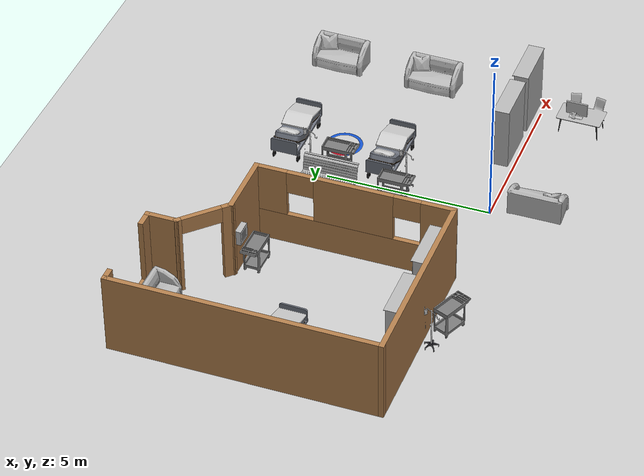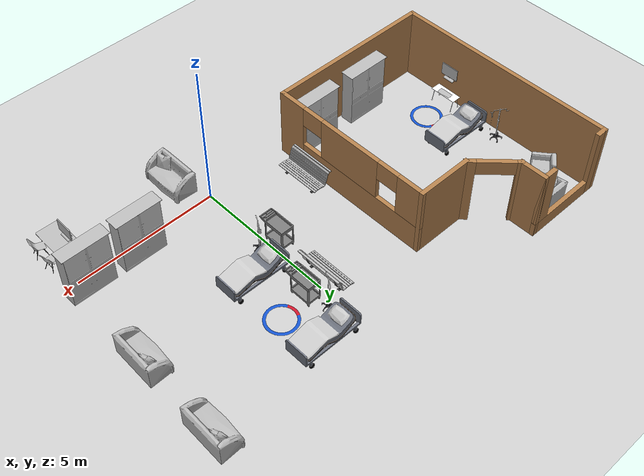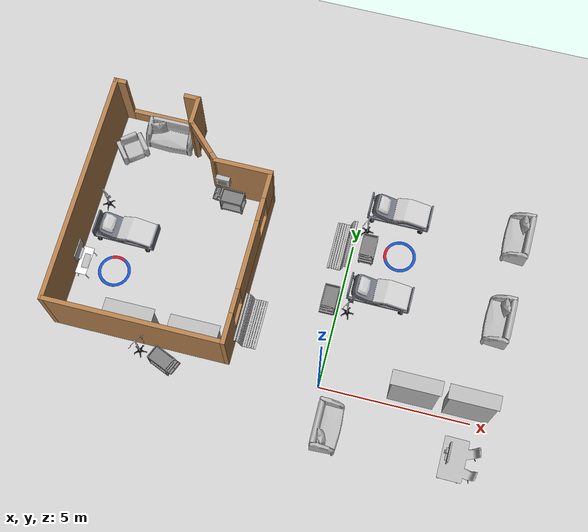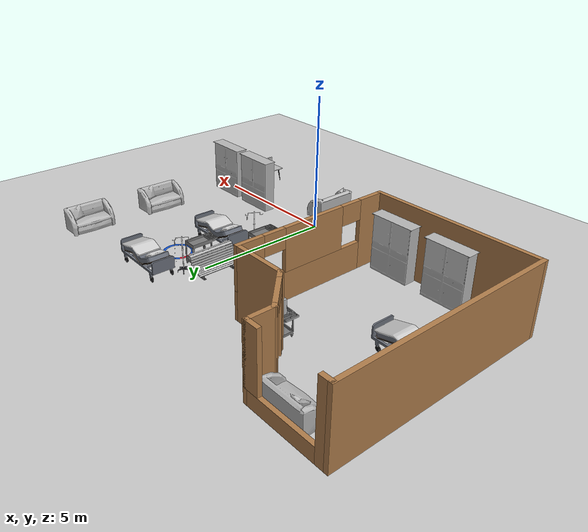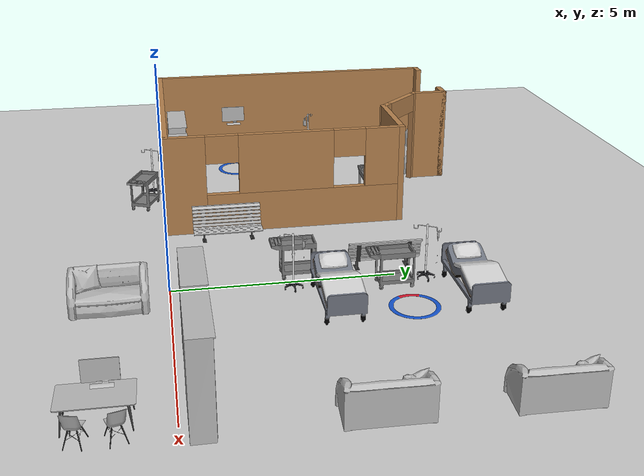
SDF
<sdf version="1.6">
 <world name="default">
  <model name="ground_plane">
   <static>1</static>
   <link name="link">
    <collision name="collision">
     <geometry><plane><normal>0 0 1</normal><size>100 100</size></plane></geometry>
     <surface>
      <contact><collide_bitmask>65535</collide_bitmask></contact>
      <friction><ode><mu>100</mu><mu2>50</mu2></ode></friction>
     </surface>
    </collision>
    <visual name="visual">
     <cast_shadows>0</cast_shadows>
     <geometry><plane><normal>0 0 1</normal><size>100 100</size></plane></geometry>
     <material>
      <script><uri>file://media/materials/scripts/gazebo.material</uri><name>Gazebo/Grey</name></script>
     </material>
    </visual>
   </link>
  </model>
  <model name="hospital_room_empty">
   <link name="Wall_0">
    <pose>-4e-06 -3.9165 0 0 -0 0</pose>
    <visual name="Wall_0_Visual">
     <pose>0 0 1.25 0 -0 0</pose>
     <geometry><box><size>6 0.15 2.5</size></box></geometry>
     <material>
      <script><uri>file://media/materials/scripts/gazebo.material</uri><name>Gazebo/Wood</name></script>
      <ambient>1 1 1 1</ambient>
     </material>
     <meta><layer>0</layer></meta>
    </visual>
    <collision name="Wall_0_Collision">
     <pose>0 0 1.25 0 -0 0</pose>
     <geometry><box><size>6 0.15 2.5</size></box></geometry>
     <surface>
      <friction>
       <ode><mu>1</mu><mu2>1</mu2><fdir1>0 0 0</fdir1><slip1>0</slip1><slip2>0</slip2></ode>
       <torsional>
        <coefficient>1</coefficient>
        <patch_radius>0</patch_radius>
        <surface_radius>0</surface_radius>
        <use_patch_radius>1</use_patch_radius>
        <ode><slip>0</slip></ode>
       </torsional>
      </friction>
      <bounce><restitution_coefficient>0</restitution_coefficient><threshold>1e+06</threshold></bounce>
      <contact>
       <collide_without_contact>0</collide_without_contact>
       <collide_without_contact_bitmask>1</collide_without_contact_bitmask>
       <collide_bitmask>1</collide_bitmask>
       <ode>
        <soft_cfm>0</soft_cfm>
        <soft_erp>0.2</soft_erp>
        <kp>1e+13</kp>
        <kd>1</kd>
        <max_vel>0.01</max_vel>
        <min_depth>0</min_depth>
       </ode>
       <bullet>
        <split_impulse>1</split_impulse>
        <split_impulse_penetration_threshold>-0.01</split_impulse_penetration_threshold>
        <soft_cfm>0</soft_cfm>
        <soft_erp>0.2</soft_erp>
        <kp>1e+13</kp>
        <kd>1</kd>
       </bullet>
      </contact>
     </surface>
    </collision>
   </link>
   <link name="Wall_3">
    <pose>-2.925 0 0 0 -0 1.5708</pose>
    <visual name="Wall_3_Visual">
     <pose>0 0 1.25 0 -0 0</pose>
     <geometry><box><size>7.98302 0.15 2.5</size></box></geometry>
     <material>
      <script><uri>file://media/materials/scripts/gazebo.material</uri><name>Gazebo/Wood</name></script>
      <ambient>1 1 1 1</ambient>
     </material>
     <meta><layer>0</layer></meta>
    </visual>
    <collision name="Wall_3_Collision">
     <pose>0 0 1.25 0 -0 0</pose>
     <geometry><box><size>7.98302 0.15 2.5</size></box></geometry>
     <surface>
      <friction>
       <ode><mu>1</mu><mu2>1</mu2><fdir1>0 0 0</fdir1><slip1>0</slip1><slip2>0</slip2></ode>
       <torsional>
        <coefficient>1</coefficient>
        <patch_radius>0</patch_radius>
        <surface_radius>0</surface_radius>
        <use_patch_radius>1</use_patch_radius>
        <ode><slip>0</slip></ode>
       </torsional>
      </friction>
      <bounce><restitution_coefficient>0</restitution_coefficient><threshold>1e+06</threshold></bounce>
      <contact>
       <collide_without_contact>0</collide_without_contact>
       <collide_without_contact_bitmask>1</collide_without_contact_bitmask>
       <collide_bitmask>1</collide_bitmask>
       <ode>
        <soft_cfm>0</soft_cfm>
        <soft_erp>0.2</soft_erp>
        <kp>1e+13</kp>
        <kd>1</kd>
        <max_vel>0.01</max_vel>
        <min_depth>0</min_depth>
       </ode>
       <bullet>
        <split_impulse>1</split_impulse>
        <split_impulse_penetration_threshold>-0.01</split_impulse_penetration_threshold>
        <soft_cfm>0</soft_cfm>
        <soft_erp>0.2</soft_erp>
        <kp>1e+13</kp>
        <kd>1</kd>
       </bullet>
      </contact>
     </surface>
    </collision>
   </link>
   <link name="Wall_4">
    <pose>-1.5 3.9165 0 0 -0 0</pose>
    <visual name="Wall_4_Visual_0">
     <pose>-1.28125 0 1.25 0 -0 0</pose>
     <geometry><box><size>0.437506 0.15 2.5</size></box></geometry>
     <material>
      <script><uri>file://media/materials/scripts/gazebo.material</uri><name>Gazebo/Wood</name></script>
      <ambient>1 1 1 1</ambient>
     </material>
     <meta><layer>0</layer></meta>
    </visual>
    <visual name="Wall_4_Visual_1">
     <pose>0.218753 0 0.25 0 -0 0</pose>
     <geometry><box><size>2.56249 0.15 0.5</size></box></geometry>
     <material>
      <script><uri>file://media/materials/scripts/gazebo.material</uri><name>Gazebo/Wood</name></script>
      <ambient>1 1 1 1</ambient>
     </material>
     <meta><layer>0</layer></meta>
    </visual>
    <visual name="Wall_4_Visual_2">
     <pose>1.21875 0 1.5 0 -0 0</pose>
     <geometry><box><size>0.562494 0.15 2</size></box></geometry>
     <material>
      <script><uri>file://media/materials/scripts/gazebo.material</uri><name>Gazebo/Wood</name></script>
      <ambient>1 1 1 1</ambient>
     </material>
     <meta><layer>0</layer></meta>
    </visual>
    <collision name="Wall_4_Collision_0">
     <pose>-1.28125 0 1.25 0 -0 0</pose>
     <geometry><box><size>0.437506 0.15 2.5</size></box></geometry>
     <surface>
      <friction>
       <ode><mu>1</mu><mu2>1</mu2><fdir1>0 0 0</fdir1><slip1>0</slip1><slip2>0</slip2></ode>
       <torsional>
        <coefficient>1</coefficient>
        <patch_radius>0</patch_radius>
        <surface_radius>0</surface_radius>
        <use_patch_radius>1</use_patch_radius>
        <ode><slip>0</slip></ode>
       </torsional>
      </friction>
      <bounce><restitution_coefficient>0</restitution_coefficient><threshold>1e+06</threshold></bounce>
      <contact>
       <collide_without_contact>0</collide_without_contact>
       <collide_without_contact_bitmask>1</collide_without_contact_bitmask>
       <collide_bitmask>1</collide_bitmask>
       <ode>
        <soft_cfm>0</soft_cfm>
        <soft_erp>0.2</soft_erp>
        <kp>1e+13</kp>
        <kd>1</kd>
        <max_vel>0.01</max_vel>
        <min_depth>0</min_depth>
       </ode>
       <bullet>
        <split_impulse>1</split_impulse>
        <split_impulse_penetration_threshold>-0.01</split_impulse_penetration_threshold>
        <soft_cfm>0</soft_cfm>
        <soft_erp>0.2</soft_erp>
        <kp>1e+13</kp>
        <kd>1</kd>
       </bullet>
      </contact>
     </surface>
    </collision>
    <collision name="Wall_4_Collision_1">
     <pose>0.218753 0 0.25 0 -0 0</pose>
     <geometry><box><size>2.56249 0.15 0.5</size></box></geometry>
     <surface>
      <friction>
       <ode><mu>1</mu><mu2>1</mu2><fdir1>0 0 0</fdir1><slip1>0</slip1><slip2>0</slip2></ode>
       <torsional>
        <coefficient>1</coefficient>
        <patch_radius>0</patch_radius>
        <surface_radius>0</surface_radius>
        <use_patch_radius>1</use_patch_radius>
        <ode><slip>0</slip></ode>
       </torsional>
      </friction>
      <bounce><restitution_coefficient>0</restitution_coefficient><threshold>1e+06</threshold></bounce>
      <contact>
       <collide_without_contact>0</collide_without_contact>
       <collide_without_contact_bitmask>1</collide_without_contact_bitmask>
       <collide_bitmask>1</collide_bitmask>
       <ode>
        <soft_cfm>0</soft_cfm>
        <soft_erp>0.2</soft_erp>
        <kp>1e+13</kp>
        <kd>1</kd>
        <max_vel>0.01</max_vel>
        <min_depth>0</min_depth>
       </ode>
       <bullet>
        <split_impulse>1</split_impulse>
        <split_impulse_penetration_threshold>-0.01</split_impulse_penetration_threshold>
        <soft_cfm>0</soft_cfm>
        <soft_erp>0.2</soft_erp>
        <kp>1e+13</kp>
        <kd>1</kd>
       </bullet>
      </contact>
     </surface>
    </collision>
    <collision name="Wall_4_Collision_2">
     <pose>1.21875 0 1.5 0 -0 0</pose>
     <geometry><box><size>0.562494 0.15 2</size></box></geometry>
     <surface>
      <friction>
       <ode><mu>1</mu><mu2>1</mu2><fdir1>0 0 0</fdir1><slip1>0</slip1><slip2>0</slip2></ode>
       <torsional>
        <coefficient>1</coefficient>
        <patch_radius>0</patch_radius>
        <surface_radius>0</surface_radius>
        <use_patch_radius>1</use_patch_radius>
        <ode><slip>0</slip></ode>
       </torsional>
      </friction>
      <bounce><restitution_coefficient>0</restitution_coefficient><threshold>1e+06</threshold></bounce>
      <contact>
       <collide_without_contact>0</collide_without_contact>
       <collide_without_contact_bitmask>1</collide_without_contact_bitmask>
       <collide_bitmask>1</collide_bitmask>
       <ode>
        <soft_cfm>0</soft_cfm>
        <soft_erp>0.2</soft_erp>
        <kp>1e+13</kp>
        <kd>1</kd>
        <max_vel>0.01</max_vel>
        <min_depth>0</min_depth>
       </ode>
       <bullet>
        <split_impulse>1</split_impulse>
        <split_impulse_penetration_threshold>-0.01</split_impulse_penetration_threshold>
        <soft_cfm>0</soft_cfm>
        <soft_erp>0.2</soft_erp>
        <kp>1e+13</kp>
        <kd>1</kd>
       </bullet>
      </contact>
     </surface>
    </collision>
   </link>
   <link name="Wall_5">
    <pose>-0.075004 3.4915 0 0 0 -1.5708</pose>
    <visual name="Wall_5_Visual">
     <pose>0 0 1.25 0 -0 0</pose>
     <geometry><box><size>1 0.15 2.5</size></box></geometry>
     <material>
      <script><uri>file://media/materials/scripts/gazebo.material</uri><name>Gazebo/Wood</name></script>
      <ambient>1 1 1 1</ambient>
     </material>
     <meta><layer>0</layer></meta>
    </visual>
    <collision name="Wall_5_Collision">
     <pose>0 0 1.25 0 -0 0</pose>
     <geometry><box><size>1 0.15 2.5</size></box></geometry>
     <surface>
      <friction>
       <ode><mu>1</mu><mu2>1</mu2><fdir1>0 0 0</fdir1><slip1>0</slip1><slip2>0</slip2></ode>
       <torsional>
        <coefficient>1</coefficient>
        <patch_radius>0</patch_radius>
        <surface_radius>0</surface_radius>
        <use_patch_radius>1</use_patch_radius>
        <ode><slip>0</slip></ode>
       </torsional>
      </friction>
      <bounce><restitution_coefficient>0</restitution_coefficient><threshold>1e+06</threshold></bounce>
      <contact>
       <collide_without_contact>0</collide_without_contact>
       <collide_without_contact_bitmask>1</collide_without_contact_bitmask>
       <collide_bitmask>1</collide_bitmask>
       <ode>
        <soft_cfm>0</soft_cfm>
        <soft_erp>0.2</soft_erp>
        <kp>1e+13</kp>
        <kd>1</kd>
        <max_vel>0.01</max_vel>
        <min_depth>0</min_depth>
       </ode>
       <bullet>
        <split_impulse>1</split_impulse>
        <split_impulse_penetration_threshold>-0.01</split_impulse_penetration_threshold>
        <soft_cfm>0</soft_cfm>
        <soft_erp>0.2</soft_erp>
        <kp>1e+13</kp>
        <kd>1</kd>
       </bullet>
      </contact>
     </surface>
    </collision>
   </link>
   <link name="Wall_7">
    <pose>2.925 -1 0 0 -0 1.5708</pose>
    <visual name="Wall_7_Visual_0">
     <pose>-2.47597 0 1.25 0 -0 0</pose>
     <geometry><box><size>1.03106 0.15 2.5</size></box></geometry>
     <material>
      <script><uri>file://media/materials/scripts/gazebo.material</uri><name>Gazebo/Wood</name></script>
      <ambient>0.921569 0.807843 0.615686 1</ambient>
     </material>
     <meta><layer>0</layer></meta>
    </visual>
    <visual name="Wall_7_Visual_1">
     <pose>0.515531 0 0.5 0 -0 0</pose>
     <geometry><box><size>4.95194 0.15 1</size></box></geometry>
     <material>
      <script><uri>file://media/materials/scripts/gazebo.material</uri><name>Gazebo/Wood</name></script>
      <ambient>0.921569 0.807843 0.615686 1</ambient>
     </material>
     <meta><layer>0</layer></meta>
    </visual>
    <visual name="Wall_7_Visual_2">
     <pose>0.016139 0 1.75 0 -0 0</pose>
     <geometry><box><size>2.35315 0.15 1.5</size></box></geometry>
     <material>
      <script><uri>file://media/materials/scripts/gazebo.material</uri><name>Gazebo/Wood</name></script>
      <ambient>0.921569 0.807843 0.615686 1</ambient>
     </material>
     <meta><layer>0</layer></meta>
    </visual>
    <visual name="Wall_7_Visual_3">
     <pose>2.49211 0 1.75 0 -0 0</pose>
     <geometry><box><size>0.998785 0.15 1.5</size></box></geometry>
     <material>
      <script><uri>file://media/materials/scripts/gazebo.material</uri><name>Gazebo/Wood</name></script>
      <ambient>0.921569 0.807843 0.615686 1</ambient>
     </material>
     <meta><layer>0</layer></meta>
    </visual>
    <visual name="Wall_7_Visual_4">
     <pose>-1.56044 0 2.15 0 -0 0</pose>
     <geometry><box><size>0.8 0.15 0.7</size></box></geometry>
     <material>
      <script><uri>file://media/materials/scripts/gazebo.material</uri><name>Gazebo/Wood</name></script>
      <ambient>0.921569 0.807843 0.615686 1</ambient>
     </material>
     <meta><layer>0</layer></meta>
    </visual>
    <visual name="Wall_7_Visual_5">
     <pose>1.59272 0 2.15 0 -0 0</pose>
     <geometry><box><size>0.8 0.15 0.7</size></box></geometry>
     <material>
      <script><uri>file://media/materials/scripts/gazebo.material</uri><name>Gazebo/Wood</name></script>
      <ambient>0.921569 0.807843 0.615686 1</ambient>
     </material>
     <meta><layer>0</layer></meta>
    </visual>
    <collision name="Wall_7_Collision_0">
     <pose>-2.47597 0 1.25 0 -0 0</pose>
     <geometry><box><size>1.03106 0.15 2.5</size></box></geometry>
     <surface>
      <friction>
       <ode><mu>1</mu><mu2>1</mu2><fdir1>0 0 0</fdir1><slip1>0</slip1><slip2>0</slip2></ode>
       <torsional>
        <coefficient>1</coefficient>
        <patch_radius>0</patch_radius>
        <surface_radius>0</surface_radius>
        <use_patch_radius>1</use_patch_radius>
        <ode><slip>0</slip></ode>
       </torsional>
      </friction>
      <bounce><restitution_coefficient>0</restitution_coefficient><threshold>1e+06</threshold></bounce>
      <contact>
       <collide_without_contact>0</collide_without_contact>
       <collide_without_contact_bitmask>1</collide_without_contact_bitmask>
       <collide_bitmask>1</collide_bitmask>
       <ode>
        <soft_cfm>0</soft_cfm>
        <soft_erp>0.2</soft_erp>
        <kp>1e+13</kp>
        <kd>1</kd>
        <max_vel>0.01</max_vel>
        <min_depth>0</min_depth>
       </ode>
       <bullet>
        <split_impulse>1</split_impulse>
        <split_impulse_penetration_threshold>-0.01</split_impulse_penetration_threshold>
        <soft_cfm>0</soft_cfm>
        <soft_erp>0.2</soft_erp>
        <kp>1e+13</kp>
        <kd>1</kd>
       </bullet>
      </contact>
     </surface>
    </collision>
    <collision name="Wall_7_Collision_1">
     <pose>0.515531 0 0.5 0 -0 0</pose>
     <geometry><box><size>4.95194 0.15 1</size></box></geometry>
     <surface>
      <friction>
       <ode><mu>1</mu><mu2>1</mu2><fdir1>0 0 0</fdir1><slip1>0</slip1><slip2>0</slip2></ode>
       <torsional>
        <coefficient>1</coefficient>
        <patch_radius>0</patch_radius>
        <surface_radius>0</surface_radius>
        <use_patch_radius>1</use_patch_radius>
        <ode><slip>0</slip></ode>
       </torsional>
      </friction>
      <bounce><restitution_coefficient>0</restitution_coefficient><threshold>1e+06</threshold></bounce>
      <contact>
       <collide_without_contact>0</collide_without_contact>
       <collide_without_contact_bitmask>1</collide_without_contact_bitmask>
       <collide_bitmask>1</collide_bitmask>
       <ode>
        <soft_cfm>0</soft_cfm>
        <soft_erp>0.2</soft_erp>
        <kp>1e+13</kp>
        <kd>1</kd>
        <max_vel>0.01</max_vel>
        <min_depth>0</min_depth>
       </ode>
       <bullet>
        <split_impulse>1</split_impulse>
        <split_impulse_penetration_threshold>-0.01</split_impulse_penetration_threshold>
        <soft_cfm>0</soft_cfm>
        <soft_erp>0.2</soft_erp>
        <kp>1e+13</kp>
        <kd>1</kd>
       </bullet>
      </contact>
     </surface>
    </collision>
    <collision name="Wall_7_Collision_2">
     <pose>0.016139 0 1.75 0 -0 0</pose>
     <geometry><box><size>2.35315 0.15 1.5</size></box></geometry>
     <surface>
      <friction>
       <ode><mu>1</mu><mu2>1</mu2><fdir1>0 0 0</fdir1><slip1>0</slip1><slip2>0</slip2></ode>
       <torsional>
        <coefficient>1</coefficient>
        <patch_radius>0</patch_radius>
        <surface_radius>0</surface_radius>
        <use_patch_radius>1</use_patch_radius>
        <ode><slip>0</slip></ode>
       </torsional>
      </friction>
      <bounce><restitution_coefficient>0</restitution_coefficient><threshold>1e+06</threshold></bounce>
      <contact>
       <collide_without_contact>0</collide_without_contact>
       <collide_without_contact_bitmask>1</collide_without_contact_bitmask>
       <collide_bitmask>1</collide_bitmask>
       <ode>
        <soft_cfm>0</soft_cfm>
        <soft_erp>0.2</soft_erp>
        <kp>1e+13</kp>
        <kd>1</kd>
        <max_vel>0.01</max_vel>
        <min_depth>0</min_depth>
       </ode>
       <bullet>
        <split_impulse>1</split_impulse>
        <split_impulse_penetration_threshold>-0.01</split_impulse_penetration_threshold>
        <soft_cfm>0</soft_cfm>
        <soft_erp>0.2</soft_erp>
        <kp>1e+13</kp>
        <kd>1</kd>
       </bullet>
      </contact>
     </surface>
    </collision>
    <collision name="Wall_7_Collision_3">
     <pose>2.49211 0 1.75 0 -0 0</pose>
     <geometry><box><size>0.998785 0.15 1.5</size></box></geometry>
     <surface>
      <friction>
       <ode><mu>1</mu><mu2>1</mu2><fdir1>0 0 0</fdir1><slip1>0</slip1><slip2>0</slip2></ode>
       <torsional>
        <coefficient>1</coefficient>
        <patch_radius>0</patch_radius>
        <surface_radius>0</surface_radius>
        <use_patch_radius>1</use_patch_radius>
        <ode><slip>0</slip></ode>
       </torsional>
      </friction>
      <bounce><restitution_coefficient>0</restitution_coefficient><threshold>1e+06</threshold></bounce>
      <contact>
       <collide_without_contact>0</collide_without_contact>
       <collide_without_contact_bitmask>1</collide_without_contact_bitmask>
       <collide_bitmask>1</collide_bitmask>
       <ode>
        <soft_cfm>0</soft_cfm>
        <soft_erp>0.2</soft_erp>
        <kp>1e+13</kp>
        <kd>1</kd>
        <max_vel>0.01</max_vel>
        <min_depth>0</min_depth>
       </ode>
       <bullet>
        <split_impulse>1</split_impulse>
        <split_impulse_penetration_threshold>-0.01</split_impulse_penetration_threshold>
        <soft_cfm>0</soft_cfm>
        <soft_erp>0.2</soft_erp>
        <kp>1e+13</kp>
        <kd>1</kd>
       </bullet>
      </contact>
     </surface>
    </collision>
    <collision name="Wall_7_Collision_4">
     <pose>-1.56044 0 2.15 0 -0 0</pose>
     <geometry><box><size>0.8 0.15 0.7</size></box></geometry>
     <surface>
      <friction>
       <ode><mu>1</mu><mu2>1</mu2><fdir1>0 0 0</fdir1><slip1>0</slip1><slip2>0</slip2></ode>
       <torsional>
        <coefficient>1</coefficient>
        <patch_radius>0</patch_radius>
        <surface_radius>0</surface_radius>
        <use_patch_radius>1</use_patch_radius>
        <ode><slip>0</slip></ode>
       </torsional>
      </friction>
      <bounce><restitution_coefficient>0</restitution_coefficient><threshold>1e+06</threshold></bounce>
      <contact>
       <collide_without_contact>0</collide_without_contact>
       <collide_without_contact_bitmask>1</collide_without_contact_bitmask>
       <collide_bitmask>1</collide_bitmask>
       <ode>
        <soft_cfm>0</soft_cfm>
        <soft_erp>0.2</soft_erp>
        <kp>1e+13</kp>
        <kd>1</kd>
        <max_vel>0.01</max_vel>
        <min_depth>0</min_depth>
       </ode>
       <bullet>
        <split_impulse>1</split_impulse>
        <split_impulse_penetration_threshold>-0.01</split_impulse_penetration_threshold>
        <soft_cfm>0</soft_cfm>
        <soft_erp>0.2</soft_erp>
        <kp>1e+13</kp>
        <kd>1</kd>
       </bullet>
      </contact>
     </surface>
    </collision>
    <collision name="Wall_7_Collision_5">
     <pose>1.59272 0 2.15 0 -0 0</pose>
     <geometry><box><size>0.8 0.15 0.7</size></box></geometry>
     <surface>
      <friction>
       <ode><mu>1</mu><mu2>1</mu2><fdir1>0 0 0</fdir1><slip1>0</slip1><slip2>0</slip2></ode>
       <torsional>
        <coefficient>1</coefficient>
        <patch_radius>0</patch_radius>
        <surface_radius>0</surface_radius>
        <use_patch_radius>1</use_patch_radius>
        <ode><slip>0</slip></ode>
       </torsional>
      </friction>
      <bounce><restitution_coefficient>0</restitution_coefficient><threshold>1e+06</threshold></bounce>
      <contact>
       <collide_without_contact>0</collide_without_contact>
       <collide_without_contact_bitmask>1</collide_without_contact_bitmask>
       <collide_bitmask>1</collide_bitmask>
       <ode>
        <soft_cfm>0</soft_cfm>
        <soft_erp>0.2</soft_erp>
        <kp>1e+13</kp>
        <kd>1</kd>
        <max_vel>0.01</max_vel>
        <min_depth>0</min_depth>
       </ode>
       <bullet>
        <split_impulse>1</split_impulse>
        <split_impulse_penetration_threshold>-0.01</split_impulse_penetration_threshold>
        <soft_cfm>0</soft_cfm>
        <soft_erp>0.2</soft_erp>
        <kp>1e+13</kp>
        <kd>1</kd>
       </bullet>
      </contact>
     </surface>
    </collision>
   </link>
   <link name="Wall_8">
    <pose>2 1.9166 0 0 -0 3.14148</pose>
    <visual name="Wall_8_Visual">
     <pose>0 0 1.25 0 -0 0</pose>
     <geometry><box><size>2 0.15 2.5</size></box></geometry>
     <material>
      <script><uri>file://media/materials/scripts/gazebo.material</uri><name>Gazebo/Wood</name></script>
      <ambient>1 1 1 1</ambient>
     </material>
     <meta><layer>0</layer></meta>
    </visual>
    <collision name="Wall_8_Collision">
     <pose>0 0 1.25 0 -0 0</pose>
     <geometry><box><size>2 0.15 2.5</size></box></geometry>
     <surface>
      <friction>
       <ode><mu>1</mu><mu2>1</mu2><fdir1>0 0 0</fdir1><slip1>0</slip1><slip2>0</slip2></ode>
       <torsional>
        <coefficient>1</coefficient>
        <patch_radius>0</patch_radius>
        <surface_radius>0</surface_radius>
        <use_patch_radius>1</use_patch_radius>
        <ode><slip>0</slip></ode>
       </torsional>
      </friction>
      <bounce><restitution_coefficient>0</restitution_coefficient><threshold>1e+06</threshold></bounce>
      <contact>
       <collide_without_contact>0</collide_without_contact>
       <collide_without_contact_bitmask>1</collide_without_contact_bitmask>
       <collide_bitmask>1</collide_bitmask>
       <ode>
        <soft_cfm>0</soft_cfm>
        <soft_erp>0.2</soft_erp>
        <kp>1e+13</kp>
        <kd>1</kd>
        <max_vel>0.01</max_vel>
        <min_depth>0</min_depth>
       </ode>
       <bullet>
        <split_impulse>1</split_impulse>
        <split_impulse_penetration_threshold>-0.01</split_impulse_penetration_threshold>
        <soft_cfm>0</soft_cfm>
        <soft_erp>0.2</soft_erp>
        <kp>1e+13</kp>
        <kd>1</kd>
       </bullet>
      </contact>
     </surface>
    </collision>
   </link>
   <link name="Wall_9">
    <pose>0.499996 2.4916 0 0 -0 2.35628</pose>
    <visual name="Wall_9_Visual_1">
     <pose>0.785148 0 1.25 0 -0 0</pose>
     <geometry><box><size>0.205905 0.15 2.5</size></box></geometry>
     <material>
      <script><uri>file://media/materials/scripts/gazebo.material</uri><name>Gazebo/Wood</name></script>
      <ambient>1 1 1 1</ambient>
     </material>
     <meta><layer>0</layer></meta>
    </visual>
    <visual name="Wall_9_Visual_0">
     <pose>-0.702952 0 1.25 0 -0 0</pose>
     <geometry><box><size>0.370295 0.15 2.5</size></box></geometry>
     <material>
      <script><uri>file://media/materials/scripts/gazebo.material</uri><name>Gazebo/Wood</name></script>
      <ambient>1 1 1 1</ambient>
     </material>
     <meta><layer>0</layer></meta>
    </visual>
    <visual name="Wall_9_Visual_2">
     <pose>0.082195 0 2.25 0 -0 0</pose>
     <geometry><box><size>1.2 0.15 0.5</size></box></geometry>
     <material>
      <script><uri>file://media/materials/scripts/gazebo.material</uri><name>Gazebo/Wood</name></script>
      <ambient>1 1 1 1</ambient>
     </material>
     <meta><layer>0</layer></meta>
    </visual>
    <collision name="Wall_9_Collision_0">
     <pose>-0.702952 0 1.25 0 -0 0</pose>
     <geometry><box><size>0.370295 0.15 2.5</size></box></geometry>
     <surface>
      <friction>
       <ode><mu>1</mu><mu2>1</mu2><fdir1>0 0 0</fdir1><slip1>0</slip1><slip2>0</slip2></ode>
       <torsional>
        <coefficient>1</coefficient>
        <patch_radius>0</patch_radius>
        <surface_radius>0</surface_radius>
        <use_patch_radius>1</use_patch_radius>
        <ode><slip>0</slip></ode>
       </torsional>
      </friction>
      <bounce><restitution_coefficient>0</restitution_coefficient><threshold>1e+06</threshold></bounce>
      <contact>
       <collide_without_contact>0</collide_without_contact>
       <collide_without_contact_bitmask>1</collide_without_contact_bitmask>
       <collide_bitmask>1</collide_bitmask>
       <ode>
        <soft_cfm>0</soft_cfm>
        <soft_erp>0.2</soft_erp>
        <kp>1e+13</kp>
        <kd>1</kd>
        <max_vel>0.01</max_vel>
        <min_depth>0</min_depth>
       </ode>
       <bullet>
        <split_impulse>1</split_impulse>
        <split_impulse_penetration_threshold>-0.01</split_impulse_penetration_threshold>
        <soft_cfm>0</soft_cfm>
        <soft_erp>0.2</soft_erp>
        <kp>1e+13</kp>
        <kd>1</kd>
       </bullet>
      </contact>
     </surface>
    </collision>
    <collision name="Wall_9_Collision_1">
     <pose>0.785148 0 1.25 0 -0 0</pose>
     <geometry><box><size>0.205905 0.15 2.5</size></box></geometry>
     <surface>
      <friction>
       <ode><mu>1</mu><mu2>1</mu2><fdir1>0 0 0</fdir1><slip1>0</slip1><slip2>0</slip2></ode>
       <torsional>
        <coefficient>1</coefficient>
        <patch_radius>0</patch_radius>
        <surface_radius>0</surface_radius>
        <use_patch_radius>1</use_patch_radius>
        <ode><slip>0</slip></ode>
       </torsional>
      </friction>
      <bounce><restitution_coefficient>0</restitution_coefficient><threshold>1e+06</threshold></bounce>
      <contact>
       <collide_without_contact>0</collide_without_contact>
       <collide_without_contact_bitmask>1</collide_without_contact_bitmask>
       <collide_bitmask>1</collide_bitmask>
       <ode>
        <soft_cfm>0</soft_cfm>
        <soft_erp>0.2</soft_erp>
        <kp>1e+13</kp>
        <kd>1</kd>
        <max_vel>0.01</max_vel>
        <min_depth>0</min_depth>
       </ode>
       <bullet>
        <split_impulse>1</split_impulse>
        <split_impulse_penetration_threshold>-0.01</split_impulse_penetration_threshold>
        <soft_cfm>0</soft_cfm>
        <soft_erp>0.2</soft_erp>
        <kp>1e+13</kp>
        <kd>1</kd>
       </bullet>
      </contact>
     </surface>
    </collision>
    <collision name="Wall_9_Collision_2">
     <pose>0.082195 0 2.25 0 -0 0</pose>
     <geometry><box><size>1.2 0.15 0.5</size></box></geometry>
     <surface>
      <friction>
       <ode><mu>1</mu><mu2>1</mu2><fdir1>0 0 0</fdir1><slip1>0</slip1><slip2>0</slip2></ode>
       <torsional>
        <coefficient>1</coefficient>
        <patch_radius>0</patch_radius>
        <surface_radius>0</surface_radius>
        <use_patch_radius>1</use_patch_radius>
        <ode><slip>0</slip></ode>
       </torsional>
      </friction>
      <bounce><restitution_coefficient>0</restitution_coefficient><threshold>1e+06</threshold></bounce>
      <contact>
       <collide_without_contact>0</collide_without_contact>
       <collide_without_contact_bitmask>1</collide_without_contact_bitmask>
       <collide_bitmask>1</collide_bitmask>
       <ode>
        <soft_cfm>0</soft_cfm>
        <soft_erp>0.2</soft_erp>
        <kp>1e+13</kp>
        <kd>1</kd>
        <max_vel>0.01</max_vel>
        <min_depth>0</min_depth>
       </ode>
       <bullet>
        <split_impulse>1</split_impulse>
        <split_impulse_penetration_threshold>-0.01</split_impulse_penetration_threshold>
        <soft_cfm>0</soft_cfm>
        <soft_erp>0.2</soft_erp>
        <kp>1e+13</kp>
        <kd>1</kd>
       </bullet>
      </contact>
     </surface>
    </collision>
   </link>
   <static>1</static>
   <pose>-6.01115 4.00828 0 0 -0 0</pose>
  </model>
  <model name="round_sofa">
   <static>0</static>
   <link name="link">
    <inertial>
     <mass>5</mass>
     <inertia><ixx>1</ixx><ixy>0</ixy><ixz>0</ixz><iyy>1</iyy><iyz>0</iyz><izz>1</izz></inertia>
    </inertial>
    <collision name="collision">
     <geometry><mesh><uri>model://round_sofa/round_sofa.dae</uri></mesh></geometry>
    </collision>
    <visual name="visual"><geometry><mesh><uri>model://round_sofa/round_sofa.dae</uri></mesh></geometry></visual>
   </link>
   <pose>-6.98546 7.36312 0.005557 -0.003617 -0.001768 -2.2e-05</pose>
  </model>
  <model name="single_sofa">
   <static>0</static>
   <link name="link">
    <inertial>
     <mass>10</mass>
     <inertia><ixx>1</ixx><ixy>0</ixy><ixz>0</ixz><iyy>1</iyy><iyz>0</iyz><izz>1</izz></inertia>
    </inertial>
    <collision name="collision">
     <geometry><mesh><uri>model://single_sofa/single_sofa.dae</uri></mesh></geometry>
    </collision>
    <visual name="visual">
     <geometry><mesh><uri>model://single_sofa/single_sofa.dae</uri></mesh></geometry>
    </visual>
   </link>
   <pose>-8.19763 6.51732 -0.002743 0.000566 -8e-06 0.673255</pose>
  </model>
  <model name="iv_pole">
   <static>0</static>
   <link name="link">
    <inertial>
     <mass>5</mass>
     <inertia><ixx>1</ixx><ixy>0</ixy><ixz>0</ixz><iyy>1</iyy><iyz>0</iyz><izz>1</izz></inertia>
    </inertial>
    <collision name="collision">
     <geometry><mesh><uri>model://iv_pole/iv_pole.dae</uri></mesh></geometry>
    </collision>
    <visual name="visual"><geometry><mesh><uri>model://iv_pole/iv_pole.dae</uri></mesh></geometry></visual>
   </link>
   <pose>-8.42965 4.47468 0.012685 0.005084 -0.008775 -1.61481</pose>
  </model>
  <model name="service_cart">
   <static>0</static>
   <link name="link">
    <inertial>
     <mass>10</mass>
     <inertia><ixx>1</ixx><ixy>0</ixy><ixz>0</ixz><iyy>1</iyy><iyz>0</iyz><izz>1</izz></inertia>
    </inertial>
    <collision name="collision">
     <geometry><mesh><uri>model://service_cart/service_cart.dae</uri></mesh></geometry>
    </collision>
    <visual name="visual">
     <geometry><mesh><uri>model://service_cart/service_cart.dae</uri></mesh></geometry>
    </visual>
   </link>
   <pose>-4.43393 5.44631 -0.000537 0.001184 0.000487 -1.59205</pose>
  </model>
  <model name="wall_locker">
   <static>1</static>
   <link name="link">
    <inertial>
     <mass>10</mass>
     <inertia><ixx>1</ixx><ixy>0</ixy><ixz>0</ixz><iyy>1</iyy><iyz>0</iyz><izz>1</izz></inertia>
    </inertial>
    <collision name="collision">
     <geometry><mesh><uri>model://wall_locker/wall_locker.dae</uri></mesh></geometry>
    </collision>
    <visual name="visual">
     <geometry><mesh><uri>model://wall_locker/wall_locker.dae</uri></mesh></geometry>
    </visual>
   </link>
   <pose>-4.74054 5.91223 0.876651 0 0 -1.59389</pose>
  </model>
  <model name="travel_bag">
   <static>0</static>
   <link name="link">
    <inertial>
     <mass>20</mass>
     <inertia><ixx>1</ixx><ixy>0</ixy><ixz>0</ixz><iyy>1</iyy><iyz>0</iyz><izz>1</izz></inertia>
    </inertial>
    <collision name="collision">
     <geometry><mesh><uri>model://hospital_bed/hospital_bed.dae</uri></mesh></geometry>
    </collision>
    <visual name="visual">
     <geometry><mesh><uri>model://hospital_bed/hospital_bed.dae</uri></mesh></geometry>
    </visual>
   </link>
   <pose>-7.51874 3.53795 -0.001742 0 0.000955 3.12824</pose>
  </model>
  <model name="ikea_desk">
   <static>0</static>
   <link name="link">
    <inertial>
     <mass>5</mass>
     <inertia><ixx>1</ixx><ixy>0</ixy><ixz>0</ixz><iyy>1</iyy><iyz>0</iyz><izz>1</izz></inertia>
    </inertial>
    <collision name="collision">
     <geometry><mesh><uri>model://ikea_desk/ikea_desk.dae</uri></mesh></geometry>
    </collision>
    <visual name="visual"><geometry><mesh><uri>model://ikea_desk/ikea_desk.dae</uri></mesh></geometry></visual>
   </link>
   <pose>-8.55722 2.15414 0.029123 2.1e-05 7.6e-05 -0.017243</pose>
  </model>
  <model name="keyboard">
   <static>0</static>
   <link name="link">
    <inertial>
     <mass>5</mass>
     <inertia><ixx>1</ixx><ixy>0</ixy><ixz>0</ixz><iyy>1</iyy><iyz>0</iyz><izz>1</izz></inertia>
    </inertial>
    <collision name="collision">
     <geometry><mesh><uri>model://keyboard/keyboard.dae</uri></mesh></geometry>
    </collision>
    <visual name="visual"><geometry><mesh><uri>model://keyboard/keyboard.dae</uri></mesh></geometry></visual>
   </link>
   <pose>-8.50759 2.17811 0.480699 0.001287 -0.000241 1.57377</pose>
  </model>
  <model name="computer_monitor">
   <static>1</static>
   <link name="link">
    <inertial>
     <mass>1</mass>
     <inertia><ixx>0.05</ixx><ixy>0</ixy><ixz>0</ixz><iyy>0.05</iyy><iyz>0</iyz><izz>0.05</izz></inertia>
    </inertial>
    <collision name="collision">
     <geometry><mesh><uri>model://computer_monitor/computer_monitor.dae</uri></mesh></geometry>
    </collision>
    <visual name="visual">
     <geometry><mesh><uri>model://computer_monitor/computer_monitor.dae</uri></mesh></geometry>
    </visual>
   </link>
   <pose>-8.59142 2.20193 1.07378 0 -0 1.55927</pose>
  </model>
  <model name="closet_0">
   <static>0</static>
   <link name="link">
    <inertial>
     <mass>10</mass>
     <inertia><ixx>0.2</ixx><ixy>0</ixy><ixz>0</ixz><iyy>0.2</iyy><iyz>0</iyz><izz>0.2</izz></inertia>
    </inertial>
    <collision name="collision"><geometry><mesh><uri>model://closet/closet.dae</uri></mesh></geometry></collision>
    <visual name="visual"><geometry><mesh><uri>model://closet/closet.dae</uri></mesh></geometry></visual>
   </link>
   <pose>-4.15936 0.43493 -0.03 0 -0 0.000221</pose>
  </model>
  <model name="closet_1">
   <static>0</static>
   <link name="link">
    <inertial>
     <mass>10</mass>
     <inertia><ixx>0.2</ixx><ixy>0</ixy><ixz>0</ixz><iyy>0.2</iyy><iyz>0</iyz><izz>0.2</izz></inertia>
    </inertial>
    <collision name="collision"><geometry><mesh><uri>model://closet/closet.dae</uri></mesh></geometry></collision>
    <visual name="visual"><geometry><mesh><uri>model://closet/closet.dae</uri></mesh></geometry></visual>
   </link>
   <pose>-6.29052 0.454272 -0.03 0 -0 0.000221</pose>
  </model>
  <model name="wooden_bench">
   <static>0</static>
   <link name="link">
    <inertial>
     <pose>0 -0.2 0 0 -0 0</pose>
     <mass>10</mass>
     <inertia><ixx>1</ixx><ixy>0</ixy><ixz>0</ixz><iyy>1</iyy><iyz>0</iyz><izz>1</izz></inertia>
    </inertial>
    <collision name="collision">
     <geometry><mesh><uri>model://wooden_bench/wooden_bench.dae</uri></mesh></geometry>
    </collision>
    <visual name="visual">
     <geometry><mesh><uri>model://wooden_bench/wooden_bench.dae</uri></mesh></geometry>
    </visual>
   </link>
   <pose>-2.49809 1.50736 0.011489 0.099946 2.8e-05 -1.57168</pose>
  </model>
  <model name="wooden_bench_0">
   <static>0</static>
   <link name="link">
    <inertial>
     <pose>0 -0.2 0 0 -0 0</pose>
     <mass>10</mass>
     <inertia><ixx>1</ixx><ixy>0</ixy><ixz>0</ixz><iyy>1</iyy><iyz>0</iyz><izz>1</izz></inertia>
    </inertial>
    <collision name="collision">
     <geometry><mesh><uri>model://wooden_bench/wooden_bench.dae</uri></mesh></geometry>
    </collision>
    <visual name="visual">
     <geometry><mesh><uri>model://wooden_bench/wooden_bench.dae</uri></mesh></geometry>
    </visual>
   </link>
   <pose>-0.462514 4.80501 -0.002597 -0.009364 -3e-06 1.57035</pose>
  </model>
  <model name="service_cart_0">
   <static>0</static>
   <link name="link">
    <inertial>
     <mass>10</mass>
     <inertia><ixx>1</ixx><ixy>0</ixy><ixz>0</ixz><iyy>1</iyy><iyz>0</iyz><izz>1</izz></inertia>
    </inertial>
    <collision name="collision">
     <geometry><mesh><uri>model://service_cart/service_cart.dae</uri></mesh></geometry>
    </collision>
    <visual name="visual">
     <geometry><mesh><uri>model://service_cart/service_cart.dae</uri></mesh></geometry>
    </visual>
   </link>
   <pose>-5.00469 -0.490555 -0.000537 0.001184 0.000487 1.17628</pose>
  </model>
  <model name="iv_pole_0">
   <static>0</static>
   <link name="link">
    <inertial>
     <mass>5</mass>
     <inertia><ixx>1</ixx><ixy>0</ixy><ixz>0</ixz><iyy>1</iyy><iyz>0</iyz><izz>1</izz></inertia>
    </inertial>
    <collision name="collision">
     <geometry><mesh><uri>model://iv_pole/iv_pole.dae</uri></mesh></geometry>
    </collision>
    <visual name="visual"><geometry><mesh><uri>model://iv_pole/iv_pole.dae</uri></mesh></geometry></visual>
   </link>
   <pose>-5.96134 -0.194067 0.012685 0.005076 -0.008774 -2.2e-05</pose>
  </model>
  <model name="chairs_and_table_0">
   <static>0</static>
   <link name="link">
    <inertial>
     <mass>30</mass>
     <inertia><ixx>1</ixx><ixy>0</ixy><ixz>0</ixz><iyy>1</iyy><iyz>0</iyz><izz>1</izz></inertia>
    </inertial>
    <collision name="collision">
     <geometry><mesh><uri>model://chairs_and_table/chairs_and_table.dae</uri></mesh></geometry>
    </collision>
    <visual name="visual">
     <geometry><mesh><uri>model://chairs_and_table/chairs_and_table.dae</uri></mesh></geometry>
    </visual>
   </link>
   <pose>4.65452 -1.33259 -0.009666 -0.001996 0.000192 1.56209</pose>
  </model>
  <model name="computer_monitor_0">
   <static>1</static>
   <link name="link">
    <inertial>
     <mass>1</mass>
     <inertia><ixx>0.05</ixx><ixy>0</ixy><ixz>0</ixz><iyy>0.05</iyy><iyz>0</iyz><izz>0.05</izz></inertia>
    </inertial>
    <collision name="collision">
     <geometry><mesh><uri>model://computer_monitor/computer_monitor.dae</uri></mesh></geometry>
    </collision>
    <visual name="visual">
     <geometry><mesh><uri>model://computer_monitor/computer_monitor.dae</uri></mesh></geometry>
    </visual>
   </link>
   <pose>4.46035 -1.23195 0.597553 0 -0 1.55795</pose>
  </model>
  <model name="round_sofa_0">
   <static>0</static>
   <link name="link">
    <inertial>
     <mass>5</mass>
     <inertia><ixx>1</ixx><ixy>0</ixy><ixz>0</ixz><iyy>1</iyy><iyz>0</iyz><izz>1</izz></inertia>
    </inertial>
    <collision name="collision">
     <geometry><mesh><uri>model://round_sofa/round_sofa.dae</uri></mesh></geometry>
    </collision>
    <visual name="visual"><geometry><mesh><uri>model://round_sofa/round_sofa.dae</uri></mesh></geometry></visual>
   </link>
   <pose>0.535723 -1.15641 0.005557 -0.003617 -0.001768 1.5741</pose>
  </model>
  <model name="travel_bag_0">
   <static>0</static>
   <link name="link">
    <inertial>
     <mass>20</mass>
     <inertia><ixx>1</ixx><ixy>0</ixy><ixz>0</ixz><iyy>1</iyy><iyz>0</iyz><izz>1</izz></inertia>
    </inertial>
    <collision name="collision">
     <geometry><mesh><uri>model://hospital_bed/hospital_bed.dae</uri></mesh></geometry>
    </collision>
    <visual name="visual">
     <geometry><mesh><uri>model://hospital_bed/hospital_bed.dae</uri></mesh></geometry>
    </visual>
   </link>
   <pose>1.26667 6.43333 -0.001742 -0 0.000955 3.13928</pose>
  </model>
  <model name="travel_bag_1">
   <static>0</static>
   <link name="link">
    <inertial>
     <mass>20</mass>
     <inertia><ixx>1</ixx><ixy>0</ixy><ixz>0</ixz><iyy>1</iyy><iyz>0</iyz><izz>1</izz></inertia>
    </inertial>
    <collision name="collision">
     <geometry><mesh><uri>model://hospital_bed/hospital_bed.dae</uri></mesh></geometry>
    </collision>
    <visual name="visual">
     <geometry><mesh><uri>model://hospital_bed/hospital_bed.dae</uri></mesh></geometry>
    </visual>
   </link>
   <pose>1.24057 3.46213 -0.001742 0 0.000955 3.13287</pose>
  </model>
  <model name="iv_pole_1">
   <static>0</static>
   <link name="link">
    <inertial>
     <mass>5</mass>
     <inertia><ixx>1</ixx><ixy>0</ixy><ixz>0</ixz><iyy>1</iyy><iyz>0</iyz><izz>1</izz></inertia>
    </inertial>
    <collision name="collision">
     <geometry><mesh><uri>model://iv_pole/iv_pole.dae</uri></mesh></geometry>
    </collision>
    <visual name="visual"><geometry><mesh><uri>model://iv_pole/iv_pole.dae</uri></mesh></geometry></visual>
   </link>
   <pose>0.31328 2.73231 0.012686 0.005075 -0.00878 0.000137</pose>
  </model>
  <model name="iv_pole_2">
   <static>0</static>
   <link name="link">
    <inertial>
     <mass>5</mass>
     <inertia><ixx>1</ixx><ixy>0</ixy><ixz>0</ixz><iyy>1</iyy><iyz>0</iyz><izz>1</izz></inertia>
    </inertial>
    <collision name="collision">
     <geometry><mesh><uri>model://iv_pole/iv_pole.dae</uri></mesh></geometry>
    </collision>
    <visual name="visual"><geometry><mesh><uri>model://iv_pole/iv_pole.dae</uri></mesh></geometry></visual>
   </link>
   <pose>0.319244 5.70614 0.012678 0.005079 -0.00877 1.5e-05</pose>
  </model>
  <model name="round_sofa_1">
   <static>0</static>
   <link name="link">
    <inertial>
     <mass>5</mass>
     <inertia><ixx>1</ixx><ixy>0</ixy><ixz>0</ixz><iyy>1</iyy><iyz>0</iyz><izz>1</izz></inertia>
    </inertial>
    <collision name="collision">
     <geometry><mesh><uri>model://round_sofa/round_sofa.dae</uri></mesh></geometry>
    </collision>
    <visual name="visual"><geometry><mesh><uri>model://round_sofa/round_sofa.dae</uri></mesh></geometry></visual>
   </link>
   <pose>5.34624 6.44122 0.005557 -0.003553 -0.0018 -1.59224</pose>
  </model>
  <model name="round_sofa_1_clone">
   <static>0</static>
   <link name="link">
    <inertial>
     <mass>5</mass>
     <inertia><ixx>1</ixx><ixy>0</ixy><ixz>0</ixz><iyy>1</iyy><iyz>0</iyz><izz>1</izz></inertia>
    </inertial>
    <collision name="collision">
     <geometry><mesh><uri>model://round_sofa/round_sofa.dae</uri></mesh></geometry>
    </collision>
    <visual name="visual"><geometry><mesh><uri>model://round_sofa/round_sofa.dae</uri></mesh></geometry></visual>
   </link>
   <pose>5.26339 3.41471 0.005557 -0.003553 -0.0018 -1.59224</pose>
  </model>
  <model name="service_cart_4">
   <static>0</static>
   <link name="link">
    <inertial>
     <mass>10</mass>
     <inertia><ixx>1</ixx><ixy>0</ixy><ixz>0</ixz><iyy>1</iyy><iyz>0</iyz><izz>1</izz></inertia>
    </inertial>
    <collision name="collision">
     <geometry><mesh><uri>model://service_cart/service_cart.dae</uri></mesh></geometry>
    </collision>
    <visual name="visual">
     <geometry><mesh><uri>model://service_cart/service_cart.dae</uri></mesh></geometry>
    </visual>
   </link>
   <pose>-0.300477 2.78103 -0.00054 0.001203 0.000478 0</pose>
  </model>
  <model name="service_cart_5">
   <static>0</static>
   <link name="link">
    <inertial>
     <mass>10</mass>
     <inertia><ixx>1</ixx><ixy>0</ixy><ixz>0</ixz><iyy>1</iyy><iyz>0</iyz><izz>1</izz></inertia>
    </inertial>
    <collision name="collision">
     <geometry><mesh><uri>model://service_cart/service_cart.dae</uri></mesh></geometry>
    </collision>
    <visual name="visual">
     <geometry><mesh><uri>model://service_cart/service_cart.dae</uri></mesh></geometry>
    </visual>
   </link>
   <pose>0.529086 4.80179 -0.00054 0.001203 0.000478 0</pose>
  </model>
  <model name="closet_6">
   <static>0</static>
   <link name="link">
    <inertial>
     <mass>10</mass>
     <inertia><ixx>0.2</ixx><ixy>0</ixy><ixz>0</ixz><iyy>0.2</iyy><iyz>0</iyz><izz>0.2</izz></inertia>
    </inertial>
    <collision name="collision"><geometry><mesh><uri>model://closet/closet.dae</uri></mesh></geometry></collision>
    <visual name="visual"><geometry><mesh><uri>model://closet/closet.dae</uri></mesh></geometry></visual>
   </link>
   <pose>4.78308 0.391512 -0.030005 -2.2e-05 0 0.000162</pose>
  </model>
  <model name="closet_7">
   <static>0</static>
   <link name="link">
    <inertial>
     <mass>10</mass>
     <inertia><ixx>0.2</ixx><ixy>0</ixy><ixz>0</ixz><iyy>0.2</iyy><iyz>0</iyz><izz>0.2</izz></inertia>
    </inertial>
    <collision name="collision"><geometry><mesh><uri>model://closet/closet.dae</uri></mesh></geometry></collision>
    <visual name="visual"><geometry><mesh><uri>model://closet/closet.dae</uri></mesh></geometry></visual>
   </link>
   <pose>2.97257 0.40268 -0.030005 -2.2e-05 0 0.000162</pose>
  </model>
  <model name="marker_1">
   <static>1</static>
   <link name="link">
    <inertial>
     <mass>10</mass>
     <inertia><ixx>0.2</ixx><ixy>0</ixy><ixz>0</ixz><iyy>0.2</iyy><iyz>0</iyz><izz>0.2</izz></inertia>
    </inertial>
    <visual name="visual"><geometry><mesh><uri>model://marker/marker.dae</uri></mesh></geometry></visual>
   </link>
   <pose>1.5864 5.04734 0 0 0 -3.13971</pose>
  </model>
  <model name="marker_2">
   <static>1</static>
   <link name="link">
    <inertial>
     <mass>10</mass>
     <inertia><ixx>0.2</ixx><ixy>0</ixy><ixz>0</ixz><iyy>0.2</iyy><iyz>0</iyz><izz>0.2</izz></inertia>
    </inertial>
    <visual name="visual"><geometry><mesh><uri>model://marker/marker.dae</uri></mesh></geometry></visual>
   </link>
   <pose>-7.62144 2.20117 0 0 -0 1.55266</pose>
  </model>
 </world>
</sdf>
